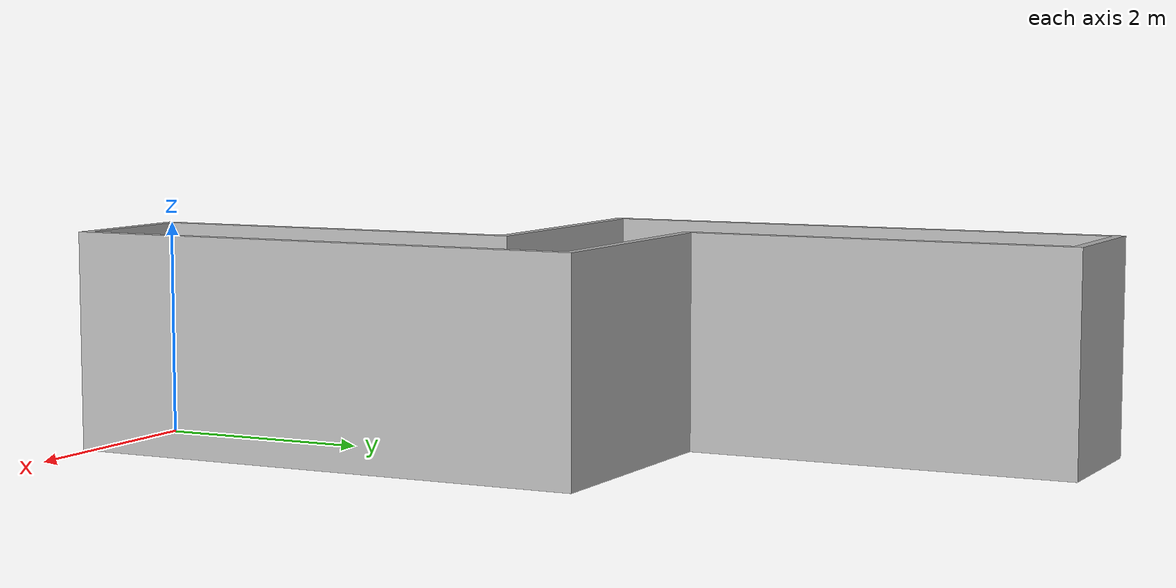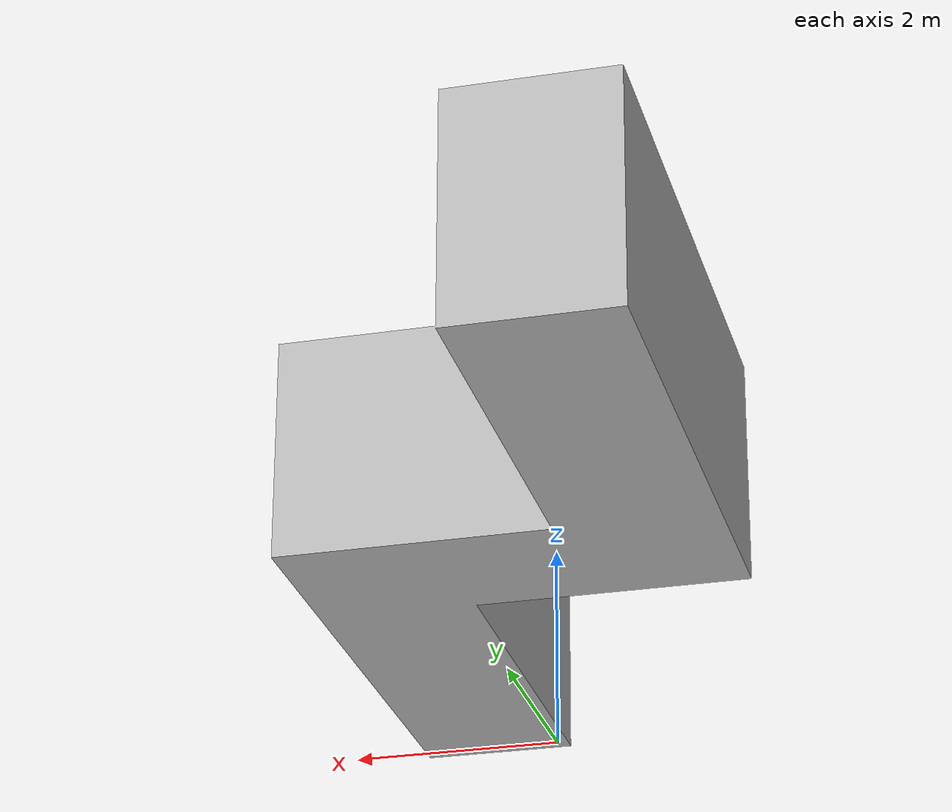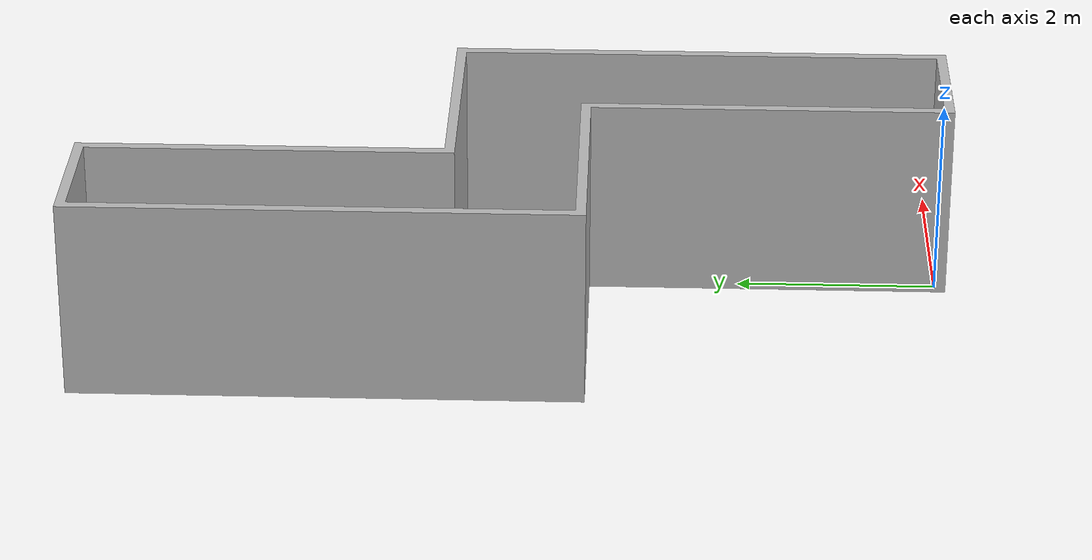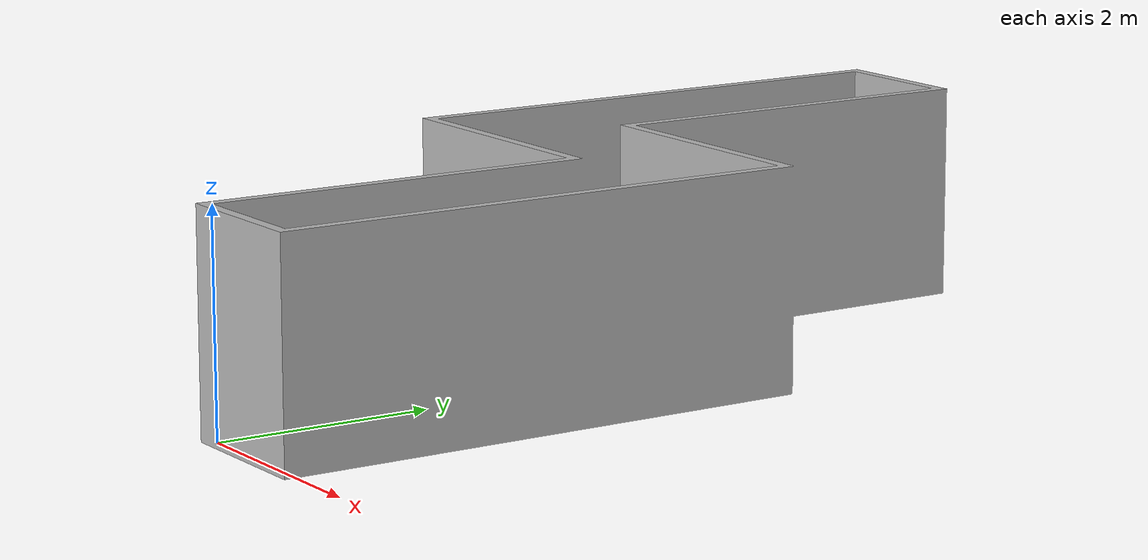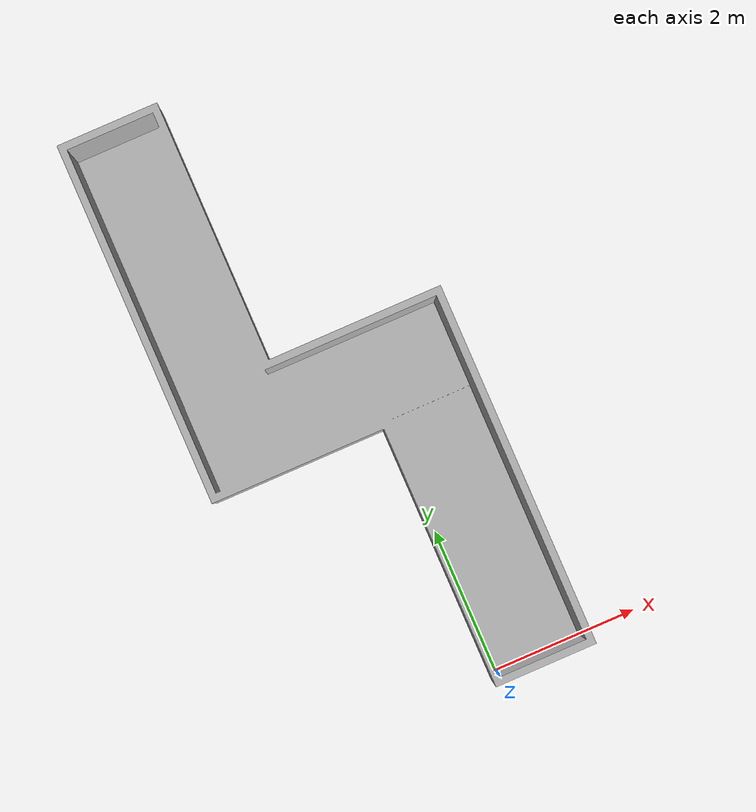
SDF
<?xml version="1.0" ?>
<sdf version="1.5">
  <model name="BlueBarHousing">
    <static>true</static>
    <link name="link">
    <gravity>1</gravity>
<inertial>
    <pose>0 0 0.4 0 0 0</pose>
        <mass>500</mass>
        <inertia>
          <ixx>51.2096</ixx>
          <iyy>51.2096</iyy>
          <izz>25</izz>
          <ixy>0</ixy>
          <ixz>0</ixz>
</inertia>
</inertial>
      <collision name="collision">
        <geometry>
          <mesh>
            <scale>1 1 1</scale>
            <uri>model://housing/meshes/housing.dae</uri>
          </mesh>
        </geometry>
      </collision>
      <visual name="visual">
        <geometry>
          <mesh>
            <scale>1 1 1</scale>
            <uri>model://housing/meshes/housing.dae</uri>
          </mesh>
        </geometry>
      </visual>
    </link>
  </model>
</sdf>
